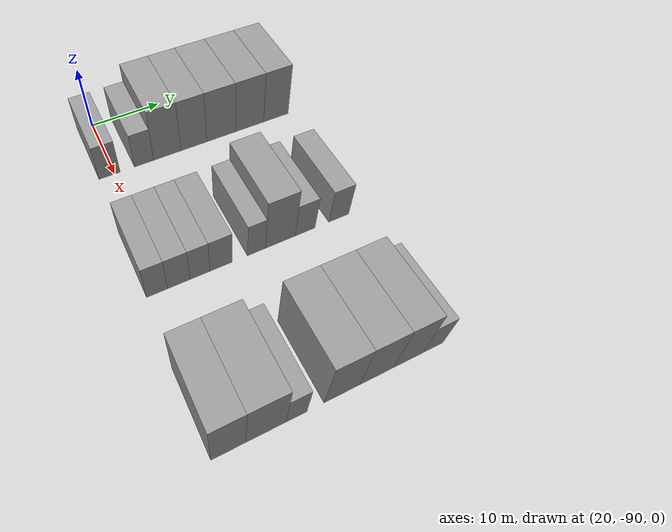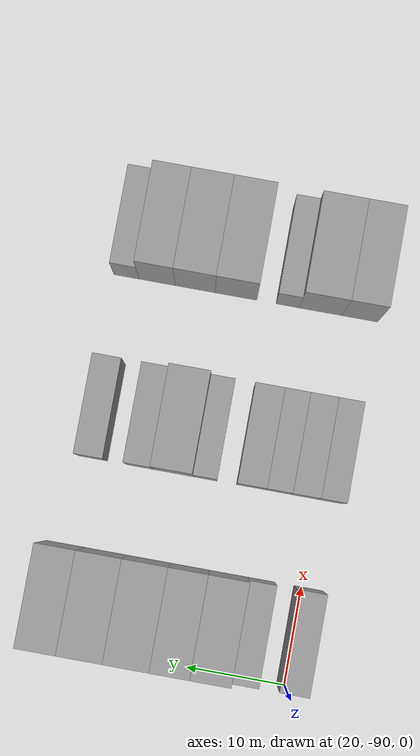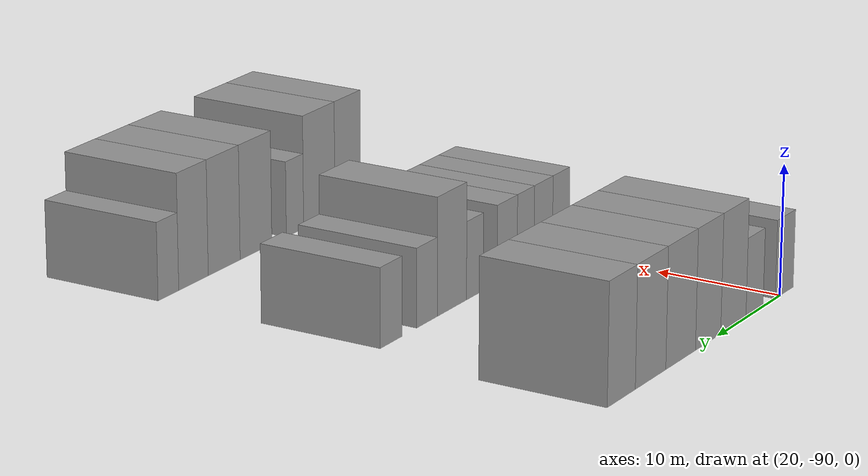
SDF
<sdf version="1.6">
 <world name="default">
  <model name="building_40">
   <static>1</static>
   <pose>25.0000 -90.6604 0 0.000000 0.000000 0.000000</pose>
   <link name="link">
    <pose>0 0 3.00 0 0 0</pose>
    <collision name="collision"><geometry><box><size>10.0000 2.9457 6.0000</size></box></geometry></collision>
    <visual name="visual">
     <cast_shadows>0</cast_shadows>
     <geometry><box><size>10.0000 2.9457 6.0000</size></box></geometry>
     <material>
      <script>
       <uri>model://grey_wall/materials/scripts</uri>
       <uri>model://grey_wall/materials/textures</uri>
       <name>vrc/grey_wall</name>
      </script>
     </material>
    </visual>
   </link>
  </model>
  <model name="building_41">
   <static>1</static>
   <pose>25.0000 -85.8141 0 0.000000 0.000000 0.000000</pose>
   <link name="link">
    <pose>0 0 3.00 0 0 0</pose>
    <collision name="collision"><geometry><box><size>10.0000 2.7468 6.0000</size></box></geometry></collision>
    <visual name="visual">
     <cast_shadows>0</cast_shadows>
     <geometry><box><size>10.0000 2.7468 6.0000</size></box></geometry>
     <material>
      <script>
       <uri>model://grey_wall/materials/scripts</uri>
       <uri>model://grey_wall/materials/textures</uri>
       <name>vrc/grey_wall</name>
      </script>
     </material>
    </visual>
   </link>
  </model>
  <model name="building_42">
   <static>1</static>
   <pose>25.0000 -82.4574 0 0.000000 0.000000 0.000000</pose>
   <link name="link">
    <pose>0 0 4.50 0 0 0</pose>
    <collision name="collision"><geometry><box><size>10.0000 3.9666 9.0000</size></box></geometry></collision>
    <visual name="visual">
     <cast_shadows>0</cast_shadows>
     <geometry><box><size>10.0000 3.9666 9.0000</size></box></geometry>
     <material>
      <script>
       <uri>model://grey_wall/materials/scripts</uri>
       <uri>model://grey_wall/materials/textures</uri>
       <name>vrc/grey_wall</name>
      </script>
     </material>
    </visual>
   </link>
  </model>
  <model name="building_43">
   <static>1</static>
   <pose>25.0000 -78.5369 0 0.000000 0.000000 0.000000</pose>
   <link name="link">
    <pose>0 0 4.50 0 0 0</pose>
    <collision name="collision"><geometry><box><size>10.0000 3.8744 9.0000</size></box></geometry></collision>
    <visual name="visual">
     <cast_shadows>0</cast_shadows>
     <geometry><box><size>10.0000 3.8744 9.0000</size></box></geometry>
     <material>
      <script>
       <uri>model://grey_wall/materials/scripts</uri>
       <uri>model://grey_wall/materials/textures</uri>
       <name>vrc/grey_wall</name>
      </script>
     </material>
    </visual>
   </link>
  </model>
  <model name="building_44">
   <static>1</static>
   <pose>25.0000 -74.3791 0 0.000000 0.000000 0.000000</pose>
   <link name="link">
    <pose>0 0 4.50 0 0 0</pose>
    <collision name="collision"><geometry><box><size>10.0000 4.4412 9.0000</size></box></geometry></collision>
    <visual name="visual">
     <cast_shadows>0</cast_shadows>
     <geometry><box><size>10.0000 4.4412 9.0000</size></box></geometry>
     <material>
      <script>
       <uri>model://grey_wall/materials/scripts</uri>
       <uri>model://grey_wall/materials/textures</uri>
       <name>vrc/grey_wall</name>
      </script>
     </material>
    </visual>
   </link>
  </model>
  <model name="building_45">
   <static>1</static>
   <pose>25.0000 -69.9395 0 0.000000 0.000000 0.000000</pose>
   <link name="link">
    <pose>0 0 4.50 0 0 0</pose>
    <collision name="collision"><geometry><box><size>10.0000 4.4379 9.0000</size></box></geometry></collision>
    <visual name="visual">
     <cast_shadows>0</cast_shadows>
     <geometry><box><size>10.0000 4.4379 9.0000</size></box></geometry>
     <material>
      <script>
       <uri>model://grey_wall/materials/scripts</uri>
       <uri>model://grey_wall/materials/textures</uri>
       <name>vrc/grey_wall</name>
      </script>
     </material>
    </visual>
   </link>
  </model>
  <model name="building_46">
   <static>1</static>
   <pose>25.0000 -65.7324 0 0.000000 0.000000 0.000000</pose>
   <link name="link">
    <pose>0 0 4.50 0 0 0</pose>
    <collision name="collision"><geometry><box><size>10.0000 3.9764 9.0000</size></box></geometry></collision>
    <visual name="visual">
     <cast_shadows>0</cast_shadows>
     <geometry><box><size>10.0000 3.9764 9.0000</size></box></geometry>
     <material>
      <script>
       <uri>model://grey_wall/materials/scripts</uri>
       <uri>model://grey_wall/materials/textures</uri>
       <name>vrc/grey_wall</name>
      </script>
     </material>
    </visual>
   </link>
  </model>
  <model name="building_162">
   <static>1</static>
   <pose>44.0000 -91.2147 0 0.000000 0.000000 0.000000</pose>
   <link name="link">
    <pose>0 0 3.00 0 0 0</pose>
    <collision name="collision"><geometry><box><size>10.0000 2.5800 6.0000</size></box></geometry></collision>
    <visual name="visual">
     <cast_shadows>0</cast_shadows>
     <geometry><box><size>10.0000 2.5800 6.0000</size></box></geometry>
     <material>
      <script>
       <uri>model://grey_wall/materials/scripts</uri>
       <uri>model://grey_wall/materials/textures</uri>
       <name>vrc/grey_wall</name>
      </script>
     </material>
    </visual>
   </link>
  </model>
  <model name="building_163">
   <static>1</static>
   <pose>44.0000 -88.5266 0 0.000000 0.000000 0.000000</pose>
   <link name="link">
    <pose>0 0 3.00 0 0 0</pose>
    <collision name="collision"><geometry><box><size>10.0000 2.7961 6.0000</size></box></geometry></collision>
    <visual name="visual">
     <cast_shadows>0</cast_shadows>
     <geometry><box><size>10.0000 2.7961 6.0000</size></box></geometry>
     <material>
      <script>
       <uri>model://grey_wall/materials/scripts</uri>
       <uri>model://grey_wall/materials/textures</uri>
       <name>vrc/grey_wall</name>
      </script>
     </material>
    </visual>
   </link>
  </model>
  <model name="building_164">
   <static>1</static>
   <pose>44.0000 -85.8614 0 0.000000 0.000000 0.000000</pose>
   <link name="link">
    <pose>0 0 3.00 0 0 0</pose>
    <collision name="collision"><geometry><box><size>10.0000 2.5344 6.0000</size></box></geometry></collision>
    <visual name="visual">
     <cast_shadows>0</cast_shadows>
     <geometry><box><size>10.0000 2.5344 6.0000</size></box></geometry>
     <material>
      <script>
       <uri>model://grey_wall/materials/scripts</uri>
       <uri>model://grey_wall/materials/textures</uri>
       <name>vrc/grey_wall</name>
      </script>
     </material>
    </visual>
   </link>
  </model>
  <model name="building_165">
   <static>1</static>
   <pose>44.0000 -83.1303 0 0.000000 0.000000 0.000000</pose>
   <link name="link">
    <pose>0 0 3.00 0 0 0</pose>
    <collision name="collision"><geometry><box><size>10.0000 2.9280 6.0000</size></box></geometry></collision>
    <visual name="visual">
     <cast_shadows>0</cast_shadows>
     <geometry><box><size>10.0000 2.9280 6.0000</size></box></geometry>
     <material>
      <script>
       <uri>model://grey_wall/materials/scripts</uri>
       <uri>model://grey_wall/materials/textures</uri>
       <name>vrc/grey_wall</name>
      </script>
     </material>
    </visual>
   </link>
  </model>
  <model name="building_166">
   <static>1</static>
   <pose>44.0000 -78.4611 0 0.000000 0.000000 0.000000</pose>
   <link name="link">
    <pose>0 0 3.00 0 0 0</pose>
    <collision name="collision"><geometry><box><size>10.0000 2.4103 6.0000</size></box></geometry></collision>
    <visual name="visual">
     <cast_shadows>0</cast_shadows>
     <geometry><box><size>10.0000 2.4103 6.0000</size></box></geometry>
     <material>
      <script>
       <uri>model://grey_wall/materials/scripts</uri>
       <uri>model://grey_wall/materials/textures</uri>
       <name>vrc/grey_wall</name>
      </script>
     </material>
    </visual>
   </link>
  </model>
  <model name="building_167">
   <static>1</static>
   <pose>44.0000 -75.2057 0 0.000000 0.000000 0.000000</pose>
   <link name="link">
    <pose>0 0 4.50 0 0 0</pose>
    <collision name="collision"><geometry><box><size>10.0000 4.1004 9.0000</size></box></geometry></collision>
    <visual name="visual">
     <cast_shadows>0</cast_shadows>
     <geometry><box><size>10.0000 4.1004 9.0000</size></box></geometry>
     <material>
      <script>
       <uri>model://grey_wall/materials/scripts</uri>
       <uri>model://grey_wall/materials/textures</uri>
       <name>vrc/grey_wall</name>
      </script>
     </material>
    </visual>
   </link>
  </model>
  <model name="building_168">
   <static>1</static>
   <pose>44.0000 -71.7477 0 0.000000 0.000000 0.000000</pose>
   <link name="link">
    <pose>0 0 3.00 0 0 0</pose>
    <collision name="collision"><geometry><box><size>10.0000 2.8157 6.0000</size></box></geometry></collision>
    <visual name="visual">
     <cast_shadows>0</cast_shadows>
     <geometry><box><size>10.0000 2.8157 6.0000</size></box></geometry>
     <material>
      <script>
       <uri>model://grey_wall/materials/scripts</uri>
       <uri>model://grey_wall/materials/textures</uri>
       <name>vrc/grey_wall</name>
      </script>
     </material>
    </visual>
   </link>
  </model>
  <model name="building_169">
   <static>1</static>
   <pose>44.0000 -66.8935 0 0.000000 0.000000 0.000000</pose>
   <link name="link">
    <pose>0 0 3.00 0 0 0</pose>
    <collision name="collision"><geometry><box><size>10.0000 2.8925 6.0000</size></box></geometry></collision>
    <visual name="visual">
     <cast_shadows>0</cast_shadows>
     <geometry><box><size>10.0000 2.8925 6.0000</size></box></geometry>
     <material>
      <script>
       <uri>model://grey_wall/materials/scripts</uri>
       <uri>model://grey_wall/materials/textures</uri>
       <name>vrc/grey_wall</name>
      </script>
     </material>
    </visual>
   </link>
  </model>
  <model name="building_277">
   <static>1</static>
   <pose>63.0000 -91.1062 0 0.000000 0.000000 0.000000</pose>
   <link name="link">
    <pose>0 0 4.50 0 0 0</pose>
    <collision name="collision"><geometry><box><size>10.0000 3.7413 9.0000</size></box></geometry></collision>
    <visual name="visual">
     <cast_shadows>0</cast_shadows>
     <geometry><box><size>10.0000 3.7413 9.0000</size></box></geometry>
     <material>
      <script>
       <uri>model://grey_wall/materials/scripts</uri>
       <uri>model://grey_wall/materials/textures</uri>
       <name>vrc/grey_wall</name>
      </script>
     </material>
    </visual>
   </link>
  </model>
  <model name="building_278">
   <static>1</static>
   <pose>63.0000 -87.0079 0 0.000000 0.000000 0.000000</pose>
   <link name="link">
    <pose>0 0 4.50 0 0 0</pose>
    <collision name="collision"><geometry><box><size>10.0000 4.4554 9.0000</size></box></geometry></collision>
    <visual name="visual">
     <cast_shadows>0</cast_shadows>
     <geometry><box><size>10.0000 4.4554 9.0000</size></box></geometry>
     <material>
      <script>
       <uri>model://grey_wall/materials/scripts</uri>
       <uri>model://grey_wall/materials/textures</uri>
       <name>vrc/grey_wall</name>
      </script>
     </material>
    </visual>
   </link>
  </model>
  <model name="building_279">
   <static>1</static>
   <pose>63.0000 -83.5750 0 0.000000 0.000000 0.000000</pose>
   <link name="link">
    <pose>0 0 3.00 0 0 0</pose>
    <collision name="collision"><geometry><box><size>10.0000 2.4104 6.0000</size></box></geometry></collision>
    <visual name="visual">
     <cast_shadows>0</cast_shadows>
     <geometry><box><size>10.0000 2.4104 6.0000</size></box></geometry>
     <material>
      <script>
       <uri>model://grey_wall/materials/scripts</uri>
       <uri>model://grey_wall/materials/textures</uri>
       <name>vrc/grey_wall</name>
      </script>
     </material>
    </visual>
   </link>
  </model>
  <model name="building_280">
   <static>1</static>
   <pose>63.0000 -78.2265 0 0.000000 0.000000 0.000000</pose>
   <link name="link">
    <pose>0 0 4.50 0 0 0</pose>
    <collision name="collision"><geometry><box><size>10.0000 4.2866 9.0000</size></box></geometry></collision>
    <visual name="visual">
     <cast_shadows>0</cast_shadows>
     <geometry><box><size>10.0000 4.2866 9.0000</size></box></geometry>
     <material>
      <script>
       <uri>model://grey_wall/materials/scripts</uri>
       <uri>model://grey_wall/materials/textures</uri>
       <name>vrc/grey_wall</name>
      </script>
     </material>
    </visual>
   </link>
  </model>
  <model name="building_281">
   <static>1</static>
   <pose>63.0000 -73.9793 0 0.000000 0.000000 0.000000</pose>
   <link name="link">
    <pose>0 0 4.50 0 0 0</pose>
    <collision name="collision"><geometry><box><size>10.0000 4.2078 9.0000</size></box></geometry></collision>
    <visual name="visual">
     <cast_shadows>0</cast_shadows>
     <geometry><box><size>10.0000 4.2078 9.0000</size></box></geometry>
     <material>
      <script>
       <uri>model://grey_wall/materials/scripts</uri>
       <uri>model://grey_wall/materials/textures</uri>
       <name>vrc/grey_wall</name>
      </script>
     </material>
    </visual>
   </link>
  </model>
  <model name="building_282">
   <static>1</static>
   <pose>63.0000 -69.9729 0 0.000000 0.000000 0.000000</pose>
   <link name="link">
    <pose>0 0 4.50 0 0 0</pose>
    <collision name="collision"><geometry><box><size>10.0000 3.8050 9.0000</size></box></geometry></collision>
    <visual name="visual">
     <cast_shadows>0</cast_shadows>
     <geometry><box><size>10.0000 3.8050 9.0000</size></box></geometry>
     <material>
      <script>
       <uri>model://grey_wall/materials/scripts</uri>
       <uri>model://grey_wall/materials/textures</uri>
       <name>vrc/grey_wall</name>
      </script>
     </material>
    </visual>
   </link>
  </model>
  <model name="building_283">
   <static>1</static>
   <pose>63.0000 -66.7602 0 0.000000 0.000000 0.000000</pose>
   <link name="link">
    <pose>0 0 3.00 0 0 0</pose>
    <collision name="collision"><geometry><box><size>10.0000 2.6204 6.0000</size></box></geometry></collision>
    <visual name="visual">
     <cast_shadows>0</cast_shadows>
     <geometry><box><size>10.0000 2.6204 6.0000</size></box></geometry>
     <material>
      <script>
       <uri>model://grey_wall/materials/scripts</uri>
       <uri>model://grey_wall/materials/textures</uri>
       <name>vrc/grey_wall</name>
      </script>
     </material>
    </visual>
   </link>
  </model>
 </world>
</sdf>
